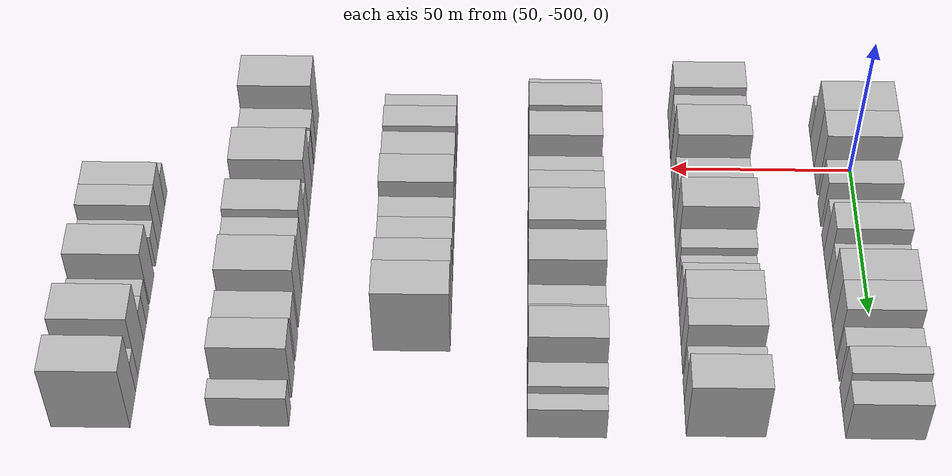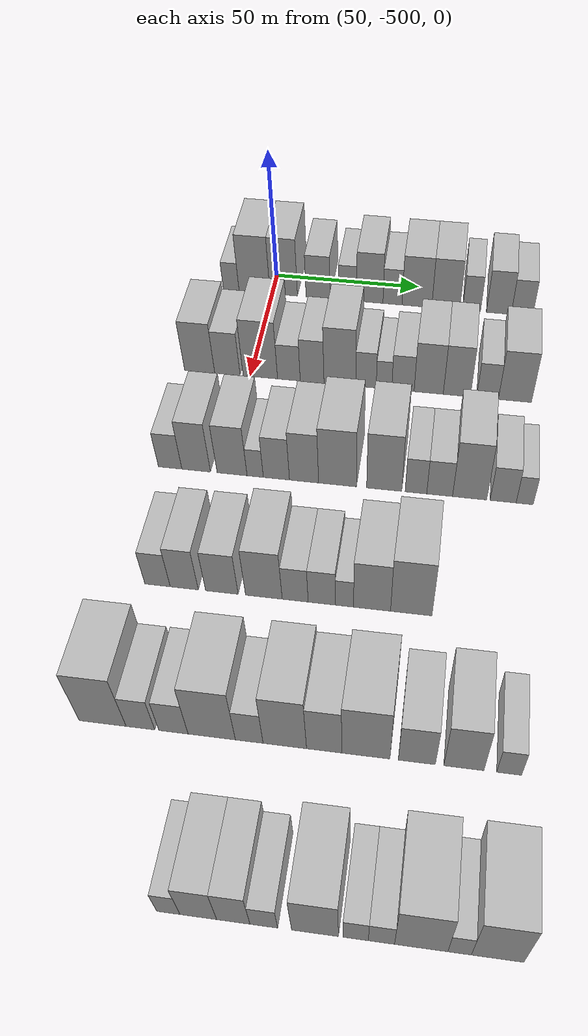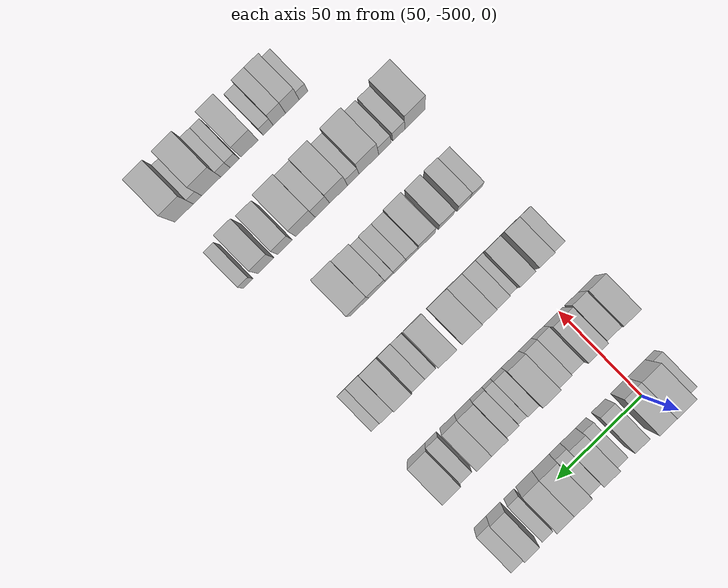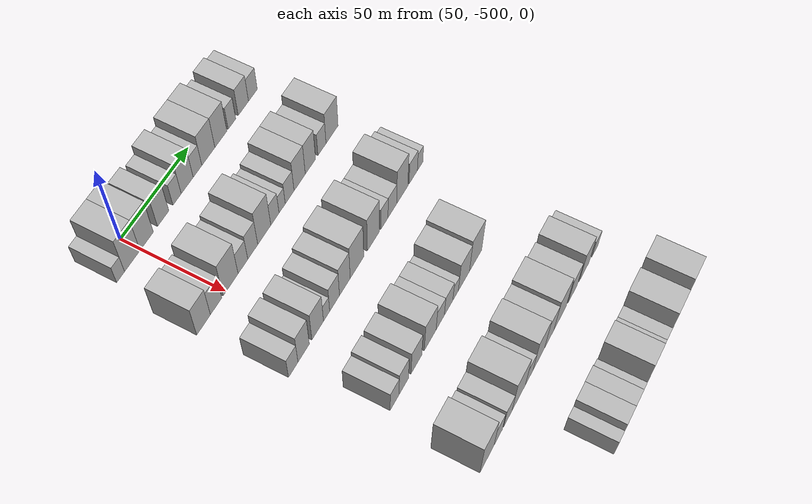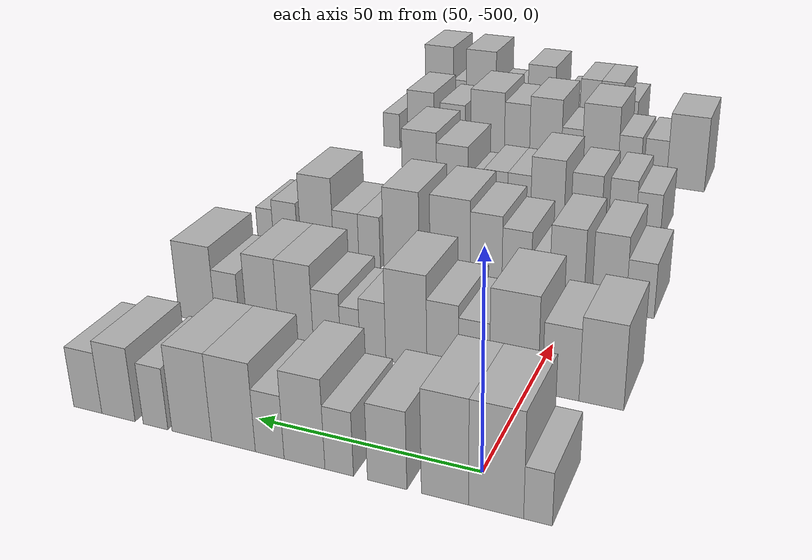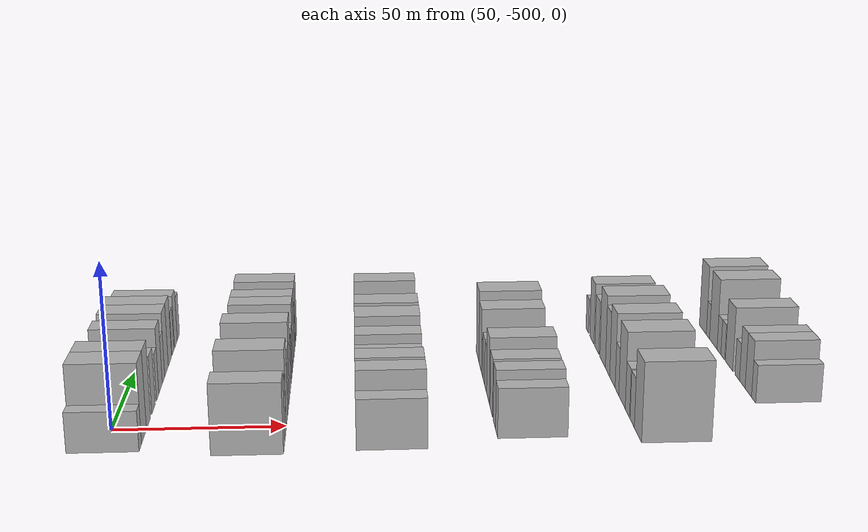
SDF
<sdf version="1.6">
 <world name="default">
  <model name="building_12">
   <static>1</static>
   <pose>50.0000 -514.4109 0 0.000000 0.000000 0.000000</pose>
   <link name="link">
    <pose>0 0 6.00 0 0 0</pose>
    <collision name="collision"><geometry><box><size>20.0000 5.5413 12.0000</size></box></geometry></collision>
    <visual name="visual">
     <cast_shadows>0</cast_shadows>
     <geometry><box><size>20.0000 5.5413 12.0000</size></box></geometry>
     <material>
      <script>
       <uri>model://HANNAS_wall/materials/scripts</uri>
       <uri>model://HANNAS_wall/materials/textures</uri>
       <name>vrc/HANNAS_wall</name>
      </script>
     </material>
    </visual>
   </link>
  </model>
  <model name="building_13">
   <static>1</static>
   <pose>50.0000 -506.1963 0 0.000000 0.000000 0.000000</pose>
   <link name="link">
    <pose>0 0 12.00 0 0 0</pose>
    <collision name="collision"><geometry><box><size>20.0000 10.8880 24.0000</size></box></geometry></collision>
    <visual name="visual">
     <cast_shadows>0</cast_shadows>
     <geometry><box><size>20.0000 10.8880 24.0000</size></box></geometry>
     <material>
      <script>
       <uri>model://HANNAS_wall/materials/scripts</uri>
       <uri>model://HANNAS_wall/materials/textures</uri>
       <name>vrc/HANNAS_wall</name>
      </script>
     </material>
    </visual>
   </link>
  </model>
  <model name="building_14">
   <static>1</static>
   <pose>50.0000 -495.9361 0 0.000000 0.000000 0.000000</pose>
   <link name="link">
    <pose>0 0 12.00 0 0 0</pose>
    <collision name="collision"><geometry><box><size>20.0000 9.6323 24.0000</size></box></geometry></collision>
    <visual name="visual">
     <cast_shadows>0</cast_shadows>
     <geometry><box><size>20.0000 9.6323 24.0000</size></box></geometry>
     <material>
      <script>
       <uri>model://HANNAS_wall/materials/scripts</uri>
       <uri>model://HANNAS_wall/materials/textures</uri>
       <name>vrc/HANNAS_wall</name>
      </script>
     </material>
    </visual>
   </link>
  </model>
  <model name="building_15">
   <static>1</static>
   <pose>50.0000 -483.9486 0 0.000000 0.000000 0.000000</pose>
   <link name="link">
    <pose>0 0 9.00 0 0 0</pose>
    <collision name="collision"><geometry><box><size>20.0000 8.3428 18.0000</size></box></geometry></collision>
    <visual name="visual">
     <cast_shadows>0</cast_shadows>
     <geometry><box><size>20.0000 8.3428 18.0000</size></box></geometry>
     <material>
      <script>
       <uri>model://HANNAS_wall/materials/scripts</uri>
       <uri>model://HANNAS_wall/materials/textures</uri>
       <name>vrc/HANNAS_wall</name>
      </script>
     </material>
    </visual>
   </link>
  </model>
  <model name="building_16">
   <static>1</static>
   <pose>50.0000 -473.6655 0 0.000000 0.000000 0.000000</pose>
   <link name="link">
    <pose>0 0 7.50 0 0 0</pose>
    <collision name="collision"><geometry><box><size>20.0000 6.2233 15.0000</size></box></geometry></collision>
    <visual name="visual">
     <cast_shadows>0</cast_shadows>
     <geometry><box><size>20.0000 6.2233 15.0000</size></box></geometry>
     <material>
      <script>
       <uri>model://HANNAS_wall/materials/scripts</uri>
       <uri>model://HANNAS_wall/materials/textures</uri>
       <name>vrc/HANNAS_wall</name>
      </script>
     </material>
    </visual>
   </link>
  </model>
  <model name="building_17">
   <static>1</static>
   <pose>50.0000 -466.0045 0 0.000000 0.000000 0.000000</pose>
   <link name="link">
    <pose>0 0 10.50 0 0 0</pose>
    <collision name="collision"><geometry><box><size>20.0000 9.0988 21.0000</size></box></geometry></collision>
    <visual name="visual">
     <cast_shadows>0</cast_shadows>
     <geometry><box><size>20.0000 9.0988 21.0000</size></box></geometry>
     <material>
      <script>
       <uri>model://HANNAS_wall/materials/scripts</uri>
       <uri>model://HANNAS_wall/materials/textures</uri>
       <name>vrc/HANNAS_wall</name>
      </script>
     </material>
    </visual>
   </link>
  </model>
  <model name="building_18">
   <static>1</static>
   <pose>50.0000 -458.1741 0 0.000000 0.000000 0.000000</pose>
   <link name="link">
    <pose>0 0 7.50 0 0 0</pose>
    <collision name="collision"><geometry><box><size>20.0000 6.5619 15.0000</size></box></geometry></collision>
    <visual name="visual">
     <cast_shadows>0</cast_shadows>
     <geometry><box><size>20.0000 6.5619 15.0000</size></box></geometry>
     <material>
      <script>
       <uri>model://HANNAS_wall/materials/scripts</uri>
       <uri>model://HANNAS_wall/materials/textures</uri>
       <name>vrc/HANNAS_wall</name>
      </script>
     </material>
    </visual>
   </link>
  </model>
  <model name="building_19">
   <static>1</static>
   <pose>50.0000 -449.7995 0 0.000000 0.000000 0.000000</pose>
   <link name="link">
    <pose>0 0 10.50 0 0 0</pose>
    <collision name="collision"><geometry><box><size>20.0000 10.1874 21.0000</size></box></geometry></collision>
    <visual name="visual">
     <cast_shadows>0</cast_shadows>
     <geometry><box><size>20.0000 10.1874 21.0000</size></box></geometry>
     <material>
      <script>
       <uri>model://HANNAS_wall/materials/scripts</uri>
       <uri>model://HANNAS_wall/materials/textures</uri>
       <name>vrc/HANNAS_wall</name>
      </script>
     </material>
    </visual>
   </link>
  </model>
  <model name="building_20">
   <static>1</static>
   <pose>50.0000 -439.9442 0 0.000000 0.000000 0.000000</pose>
   <link name="link">
    <pose>0 0 10.50 0 0 0</pose>
    <collision name="collision"><geometry><box><size>20.0000 9.5231 21.0000</size></box></geometry></collision>
    <visual name="visual">
     <cast_shadows>0</cast_shadows>
     <geometry><box><size>20.0000 9.5231 21.0000</size></box></geometry>
     <material>
      <script>
       <uri>model://HANNAS_wall/materials/scripts</uri>
       <uri>model://HANNAS_wall/materials/textures</uri>
       <name>vrc/HANNAS_wall</name>
      </script>
     </material>
    </visual>
   </link>
  </model>
  <model name="building_21">
   <static>1</static>
   <pose>50.0000 -431.1389 0 0.000000 0.000000 0.000000</pose>
   <link name="link">
    <pose>0 0 7.50 0 0 0</pose>
    <collision name="collision"><geometry><box><size>20.0000 6.0876 15.0000</size></box></geometry></collision>
    <visual name="visual">
     <cast_shadows>0</cast_shadows>
     <geometry><box><size>20.0000 6.0876 15.0000</size></box></geometry>
     <material>
      <script>
       <uri>model://HANNAS_wall/materials/scripts</uri>
       <uri>model://HANNAS_wall/materials/textures</uri>
       <name>vrc/HANNAS_wall</name>
      </script>
     </material>
    </visual>
   </link>
  </model>
  <model name="building_22">
   <static>1</static>
   <pose>50.0000 -421.9012 0 0.000000 0.000000 0.000000</pose>
   <link name="link">
    <pose>0 0 9.00 0 0 0</pose>
    <collision name="collision"><geometry><box><size>20.0000 8.3877 18.0000</size></box></geometry></collision>
    <visual name="visual">
     <cast_shadows>0</cast_shadows>
     <geometry><box><size>20.0000 8.3877 18.0000</size></box></geometry>
     <material>
      <script>
       <uri>model://HANNAS_wall/materials/scripts</uri>
       <uri>model://HANNAS_wall/materials/textures</uri>
       <name>vrc/HANNAS_wall</name>
      </script>
     </material>
    </visual>
   </link>
  </model>
  <model name="building_23">
   <static>1</static>
   <pose>50.0000 -414.0923 0 0.000000 0.000000 0.000000</pose>
   <link name="link">
    <pose>0 0 7.50 0 0 0</pose>
    <collision name="collision"><geometry><box><size>20.0000 7.2301 15.0000</size></box></geometry></collision>
    <visual name="visual">
     <cast_shadows>0</cast_shadows>
     <geometry><box><size>20.0000 7.2301 15.0000</size></box></geometry>
     <material>
      <script>
       <uri>model://HANNAS_wall/materials/scripts</uri>
       <uri>model://HANNAS_wall/materials/textures</uri>
       <name>vrc/HANNAS_wall</name>
      </script>
     </material>
    </visual>
   </link>
  </model>
  <model name="building_149">
   <static>1</static>
   <pose>90.0000 -516.5032 0 0.000000 0.000000 0.000000</pose>
   <link name="link">
    <pose>0 0 10.50 0 0 0</pose>
    <collision name="collision"><geometry><box><size>20.0000 9.8669 21.0000</size></box></geometry></collision>
    <visual name="visual">
     <cast_shadows>0</cast_shadows>
     <geometry><box><size>20.0000 9.8669 21.0000</size></box></geometry>
     <material>
      <script>
       <uri>model://HANNAS_wall/materials/scripts</uri>
       <uri>model://HANNAS_wall/materials/textures</uri>
       <name>vrc/HANNAS_wall</name>
      </script>
     </material>
    </visual>
   </link>
  </model>
  <model name="building_150">
   <static>1</static>
   <pose>90.0000 -507.4318 0 0.000000 0.000000 0.000000</pose>
   <link name="link">
    <pose>0 0 9.00 0 0 0</pose>
    <collision name="collision"><geometry><box><size>20.0000 8.2759 18.0000</size></box></geometry></collision>
    <visual name="visual">
     <cast_shadows>0</cast_shadows>
     <geometry><box><size>20.0000 8.2759 18.0000</size></box></geometry>
     <material>
      <script>
       <uri>model://HANNAS_wall/materials/scripts</uri>
       <uri>model://HANNAS_wall/materials/textures</uri>
       <name>vrc/HANNAS_wall</name>
      </script>
     </material>
    </visual>
   </link>
  </model>
  <model name="building_151">
   <static>1</static>
   <pose>90.0000 -496.7005 0 0.000000 0.000000 0.000000</pose>
   <link name="link">
    <pose>0 0 12.00 0 0 0</pose>
    <collision name="collision"><geometry><box><size>20.0000 11.1866 24.0000</size></box></geometry></collision>
    <visual name="visual">
     <cast_shadows>0</cast_shadows>
     <geometry><box><size>20.0000 11.1866 24.0000</size></box></geometry>
     <material>
      <script>
       <uri>model://HANNAS_wall/materials/scripts</uri>
       <uri>model://HANNAS_wall/materials/textures</uri>
       <name>vrc/HANNAS_wall</name>
      </script>
     </material>
    </visual>
   </link>
  </model>
  <model name="building_152">
   <static>1</static>
   <pose>90.0000 -487.4427 0 0.000000 0.000000 0.000000</pose>
   <link name="link">
    <pose>0 0 7.50 0 0 0</pose>
    <collision name="collision"><geometry><box><size>20.0000 7.3288 15.0000</size></box></geometry></collision>
    <visual name="visual">
     <cast_shadows>0</cast_shadows>
     <geometry><box><size>20.0000 7.3288 15.0000</size></box></geometry>
     <material>
      <script>
       <uri>model://HANNAS_wall/materials/scripts</uri>
       <uri>model://HANNAS_wall/materials/textures</uri>
       <name>vrc/HANNAS_wall</name>
      </script>
     </material>
    </visual>
   </link>
  </model>
  <model name="building_153">
   <static>1</static>
   <pose>90.0000 -479.9541 0 0.000000 0.000000 0.000000</pose>
   <link name="link">
    <pose>0 0 9.00 0 0 0</pose>
    <collision name="collision"><geometry><box><size>20.0000 7.6484 18.0000</size></box></geometry></collision>
    <visual name="visual">
     <cast_shadows>0</cast_shadows>
     <geometry><box><size>20.0000 7.6484 18.0000</size></box></geometry>
     <material>
      <script>
       <uri>model://HANNAS_wall/materials/scripts</uri>
       <uri>model://HANNAS_wall/materials/textures</uri>
       <name>vrc/HANNAS_wall</name>
      </script>
     </material>
    </visual>
   </link>
  </model>
  <model name="building_154">
   <static>1</static>
   <pose>90.0000 -471.0406 0 0.000000 0.000000 0.000000</pose>
   <link name="link">
    <pose>0 0 12.00 0 0 0</pose>
    <collision name="collision"><geometry><box><size>20.0000 10.1787 24.0000</size></box></geometry></collision>
    <visual name="visual">
     <cast_shadows>0</cast_shadows>
     <geometry><box><size>20.0000 10.1787 24.0000</size></box></geometry>
     <material>
      <script>
       <uri>model://HANNAS_wall/materials/scripts</uri>
       <uri>model://HANNAS_wall/materials/textures</uri>
       <name>vrc/HANNAS_wall</name>
      </script>
     </material>
    </visual>
   </link>
  </model>
  <model name="building_155">
   <static>1</static>
   <pose>90.0000 -462.6924 0 0.000000 0.000000 0.000000</pose>
   <link name="link">
    <pose>0 0 7.50 0 0 0</pose>
    <collision name="collision"><geometry><box><size>20.0000 6.5176 15.0000</size></box></geometry></collision>
    <visual name="visual">
     <cast_shadows>0</cast_shadows>
     <geometry><box><size>20.0000 6.5176 15.0000</size></box></geometry>
     <material>
      <script>
       <uri>model://HANNAS_wall/materials/scripts</uri>
       <uri>model://HANNAS_wall/materials/textures</uri>
       <name>vrc/HANNAS_wall</name>
      </script>
     </material>
    </visual>
   </link>
  </model>
  <model name="building_156">
   <static>1</static>
   <pose>90.0000 -456.9535 0 0.000000 0.000000 0.000000</pose>
   <link name="link">
    <pose>0 0 6.00 0 0 0</pose>
    <collision name="collision"><geometry><box><size>20.0000 4.9603 12.0000</size></box></geometry></collision>
    <visual name="visual">
     <cast_shadows>0</cast_shadows>
     <geometry><box><size>20.0000 4.9603 12.0000</size></box></geometry>
     <material>
      <script>
       <uri>model://HANNAS_wall/materials/scripts</uri>
       <uri>model://HANNAS_wall/materials/textures</uri>
       <name>vrc/HANNAS_wall</name>
      </script>
     </material>
    </visual>
   </link>
  </model>
  <model name="building_157">
   <static>1</static>
   <pose>90.0000 -450.9360 0 0.000000 0.000000 0.000000</pose>
   <link name="link">
    <pose>0 0 7.50 0 0 0</pose>
    <collision name="collision"><geometry><box><size>20.0000 7.0747 15.0000</size></box></geometry></collision>
    <visual name="visual">
     <cast_shadows>0</cast_shadows>
     <geometry><box><size>20.0000 7.0747 15.0000</size></box></geometry>
     <material>
      <script>
       <uri>model://HANNAS_wall/materials/scripts</uri>
       <uri>model://HANNAS_wall/materials/textures</uri>
       <name>vrc/HANNAS_wall</name>
      </script>
     </material>
    </visual>
   </link>
  </model>
  <model name="building_158">
   <static>1</static>
   <pose>90.0000 -442.7966 0 0.000000 0.000000 0.000000</pose>
   <link name="link">
    <pose>0 0 10.50 0 0 0</pose>
    <collision name="collision"><geometry><box><size>20.0000 9.2040 21.0000</size></box></geometry></collision>
    <visual name="visual">
     <cast_shadows>0</cast_shadows>
     <geometry><box><size>20.0000 9.2040 21.0000</size></box></geometry>
     <material>
      <script>
       <uri>model://HANNAS_wall/materials/scripts</uri>
       <uri>model://HANNAS_wall/materials/textures</uri>
       <name>vrc/HANNAS_wall</name>
      </script>
     </material>
    </visual>
   </link>
  </model>
  <model name="building_159">
   <static>1</static>
   <pose>90.0000 -433.9393 0 0.000000 0.000000 0.000000</pose>
   <link name="link">
    <pose>0 0 10.50 0 0 0</pose>
    <collision name="collision"><geometry><box><size>20.0000 8.5106 21.0000</size></box></geometry></collision>
    <visual name="visual">
     <cast_shadows>0</cast_shadows>
     <geometry><box><size>20.0000 8.5106 21.0000</size></box></geometry>
     <material>
      <script>
       <uri>model://HANNAS_wall/materials/scripts</uri>
       <uri>model://HANNAS_wall/materials/textures</uri>
       <name>vrc/HANNAS_wall</name>
      </script>
     </material>
    </visual>
   </link>
  </model>
  <model name="building_160">
   <static>1</static>
   <pose>90.0000 -424.2913 0 0.000000 0.000000 0.000000</pose>
   <link name="link">
    <pose>0 0 7.50 0 0 0</pose>
    <collision name="collision"><geometry><box><size>20.0000 6.7853 15.0000</size></box></geometry></collision>
    <visual name="visual">
     <cast_shadows>0</cast_shadows>
     <geometry><box><size>20.0000 6.7853 15.0000</size></box></geometry>
     <material>
      <script>
       <uri>model://HANNAS_wall/materials/scripts</uri>
       <uri>model://HANNAS_wall/materials/textures</uri>
       <name>vrc/HANNAS_wall</name>
      </script>
     </material>
    </visual>
   </link>
  </model>
  <model name="building_161">
   <static>1</static>
   <pose>90.0000 -415.7488 0 0.000000 0.000000 0.000000</pose>
   <link name="link">
    <pose>0 0 10.50 0 0 0</pose>
    <collision name="collision"><geometry><box><size>20.0000 10.2997 21.0000</size></box></geometry></collision>
    <visual name="visual">
     <cast_shadows>0</cast_shadows>
     <geometry><box><size>20.0000 10.2997 21.0000</size></box></geometry>
     <material>
      <script>
       <uri>model://HANNAS_wall/materials/scripts</uri>
       <uri>model://HANNAS_wall/materials/textures</uri>
       <name>vrc/HANNAS_wall</name>
      </script>
     </material>
    </visual>
   </link>
  </model>
  <model name="building_290">
   <static>1</static>
   <pose>130.0000 -516.3185 0 0.000000 0.000000 0.000000</pose>
   <link name="link">
    <pose>0 0 7.50 0 0 0</pose>
    <collision name="collision"><geometry><box><size>20.0000 7.0874 15.0000</size></box></geometry></collision>
    <visual name="visual">
     <cast_shadows>0</cast_shadows>
     <geometry><box><size>20.0000 7.0874 15.0000</size></box></geometry>
     <material>
      <script>
       <uri>model://HANNAS_wall/materials/scripts</uri>
       <uri>model://HANNAS_wall/materials/textures</uri>
       <name>vrc/HANNAS_wall</name>
      </script>
     </material>
    </visual>
   </link>
  </model>
  <model name="building_291">
   <static>1</static>
   <pose>130.0000 -508.4704 0 0.000000 0.000000 0.000000</pose>
   <link name="link">
    <pose>0 0 10.50 0 0 0</pose>
    <collision name="collision"><geometry><box><size>20.0000 8.6089 21.0000</size></box></geometry></collision>
    <visual name="visual">
     <cast_shadows>0</cast_shadows>
     <geometry><box><size>20.0000 8.6089 21.0000</size></box></geometry>
     <material>
      <script>
       <uri>model://HANNAS_wall/materials/scripts</uri>
       <uri>model://HANNAS_wall/materials/textures</uri>
       <name>vrc/HANNAS_wall</name>
      </script>
     </material>
    </visual>
   </link>
  </model>
  <model name="building_292">
   <static>1</static>
   <pose>130.0000 -497.6814 0 0.000000 0.000000 0.000000</pose>
   <link name="link">
    <pose>0 0 10.50 0 0 0</pose>
    <collision name="collision"><geometry><box><size>20.0000 8.9689 21.0000</size></box></geometry></collision>
    <visual name="visual">
     <cast_shadows>0</cast_shadows>
     <geometry><box><size>20.0000 8.9689 21.0000</size></box></geometry>
     <material>
      <script>
       <uri>model://HANNAS_wall/materials/scripts</uri>
       <uri>model://HANNAS_wall/materials/textures</uri>
       <name>vrc/HANNAS_wall</name>
      </script>
     </material>
    </visual>
   </link>
  </model>
  <model name="building_293">
   <static>1</static>
   <pose>130.0000 -490.7765 0 0.000000 0.000000 0.000000</pose>
   <link name="link">
    <pose>0 0 6.00 0 0 0</pose>
    <collision name="collision"><geometry><box><size>20.0000 4.8409 12.0000</size></box></geometry></collision>
    <visual name="visual">
     <cast_shadows>0</cast_shadows>
     <geometry><box><size>20.0000 4.8409 12.0000</size></box></geometry>
     <material>
      <script>
       <uri>model://HANNAS_wall/materials/scripts</uri>
       <uri>model://HANNAS_wall/materials/textures</uri>
       <name>vrc/HANNAS_wall</name>
      </script>
     </material>
    </visual>
   </link>
  </model>
  <model name="building_294">
   <static>1</static>
   <pose>130.0000 -484.4724 0 0.000000 0.000000 0.000000</pose>
   <link name="link">
    <pose>0 0 9.00 0 0 0</pose>
    <collision name="collision"><geometry><box><size>20.0000 7.7673 18.0000</size></box></geometry></collision>
    <visual name="visual">
     <cast_shadows>0</cast_shadows>
     <geometry><box><size>20.0000 7.7673 18.0000</size></box></geometry>
     <material>
      <script>
       <uri>model://HANNAS_wall/materials/scripts</uri>
       <uri>model://HANNAS_wall/materials/textures</uri>
       <name>vrc/HANNAS_wall</name>
      </script>
     </material>
    </visual>
   </link>
  </model>
  <model name="building_295">
   <static>1</static>
   <pose>130.0000 -476.2805 0 0.000000 0.000000 0.000000</pose>
   <link name="link">
    <pose>0 0 10.50 0 0 0</pose>
    <collision name="collision"><geometry><box><size>20.0000 8.6164 21.0000</size></box></geometry></collision>
    <visual name="visual">
     <cast_shadows>0</cast_shadows>
     <geometry><box><size>20.0000 8.6164 21.0000</size></box></geometry>
     <material>
      <script>
       <uri>model://HANNAS_wall/materials/scripts</uri>
       <uri>model://HANNAS_wall/materials/textures</uri>
       <name>vrc/HANNAS_wall</name>
      </script>
     </material>
    </visual>
   </link>
  </model>
  <model name="building_296">
   <static>1</static>
   <pose>130.0000 -466.4244 0 0.000000 0.000000 0.000000</pose>
   <link name="link">
    <pose>0 0 12.00 0 0 0</pose>
    <collision name="collision"><geometry><box><size>20.0000 11.0957 24.0000</size></box></geometry></collision>
    <visual name="visual">
     <cast_shadows>0</cast_shadows>
     <geometry><box><size>20.0000 11.0957 24.0000</size></box></geometry>
     <material>
      <script>
       <uri>model://HANNAS_wall/materials/scripts</uri>
       <uri>model://HANNAS_wall/materials/textures</uri>
       <name>vrc/HANNAS_wall</name>
      </script>
     </material>
    </visual>
   </link>
  </model>
  <model name="building_297">
   <static>1</static>
   <pose>130.0000 -452.7610 0 0.000000 0.000000 0.000000</pose>
   <link name="link">
    <pose>0 0 12.00 0 0 0</pose>
    <collision name="collision"><geometry><box><size>20.0000 10.2312 24.0000</size></box></geometry></collision>
    <visual name="visual">
     <cast_shadows>0</cast_shadows>
     <geometry><box><size>20.0000 10.2312 24.0000</size></box></geometry>
     <material>
      <script>
       <uri>model://HANNAS_wall/materials/scripts</uri>
       <uri>model://HANNAS_wall/materials/textures</uri>
       <name>vrc/HANNAS_wall</name>
      </script>
     </material>
    </visual>
   </link>
  </model>
  <model name="building_298">
   <static>1</static>
   <pose>130.0000 -443.5196 0 0.000000 0.000000 0.000000</pose>
   <link name="link">
    <pose>0 0 7.50 0 0 0</pose>
    <collision name="collision"><geometry><box><size>20.0000 6.2516 15.0000</size></box></geometry></collision>
    <visual name="visual">
     <cast_shadows>0</cast_shadows>
     <geometry><box><size>20.0000 6.2516 15.0000</size></box></geometry>
     <material>
      <script>
       <uri>model://HANNAS_wall/materials/scripts</uri>
       <uri>model://HANNAS_wall/materials/textures</uri>
       <name>vrc/HANNAS_wall</name>
      </script>
     </material>
    </visual>
   </link>
  </model>
  <model name="building_299">
   <static>1</static>
   <pose>130.0000 -436.6660 0 0.000000 0.000000 0.000000</pose>
   <link name="link">
    <pose>0 0 7.50 0 0 0</pose>
    <collision name="collision"><geometry><box><size>20.0000 7.4555 15.0000</size></box></geometry></collision>
    <visual name="visual">
     <cast_shadows>0</cast_shadows>
     <geometry><box><size>20.0000 7.4555 15.0000</size></box></geometry>
     <material>
      <script>
       <uri>model://HANNAS_wall/materials/scripts</uri>
       <uri>model://HANNAS_wall/materials/textures</uri>
       <name>vrc/HANNAS_wall</name>
      </script>
     </material>
    </visual>
   </link>
  </model>
  <model name="building_300">
   <static>1</static>
   <pose>130.0000 -428.0260 0 0.000000 0.000000 0.000000</pose>
   <link name="link">
    <pose>0 0 12.00 0 0 0</pose>
    <collision name="collision"><geometry><box><size>20.0000 9.8245 24.0000</size></box></geometry></collision>
    <visual name="visual">
     <cast_shadows>0</cast_shadows>
     <geometry><box><size>20.0000 9.8245 24.0000</size></box></geometry>
     <material>
      <script>
       <uri>model://HANNAS_wall/materials/scripts</uri>
       <uri>model://HANNAS_wall/materials/textures</uri>
       <name>vrc/HANNAS_wall</name>
      </script>
     </material>
    </visual>
   </link>
  </model>
  <model name="building_301">
   <static>1</static>
   <pose>130.0000 -418.3978 0 0.000000 0.000000 0.000000</pose>
   <link name="link">
    <pose>0 0 7.50 0 0 0</pose>
    <collision name="collision"><geometry><box><size>20.0000 7.4320 15.0000</size></box></geometry></collision>
    <visual name="visual">
     <cast_shadows>0</cast_shadows>
     <geometry><box><size>20.0000 7.4320 15.0000</size></box></geometry>
     <material>
      <script>
       <uri>model://HANNAS_wall/materials/scripts</uri>
       <uri>model://HANNAS_wall/materials/textures</uri>
       <name>vrc/HANNAS_wall</name>
      </script>
     </material>
    </visual>
   </link>
  </model>
  <model name="building_302">
   <static>1</static>
   <pose>130.0000 -412.2387 0 0.000000 0.000000 0.000000</pose>
   <link name="link">
    <pose>0 0 6.00 0 0 0</pose>
    <collision name="collision"><geometry><box><size>20.0000 4.8861 12.0000</size></box></geometry></collision>
    <visual name="visual">
     <cast_shadows>0</cast_shadows>
     <geometry><box><size>20.0000 4.8861 12.0000</size></box></geometry>
     <material>
      <script>
       <uri>model://HANNAS_wall/materials/scripts</uri>
       <uri>model://HANNAS_wall/materials/textures</uri>
       <name>vrc/HANNAS_wall</name>
      </script>
     </material>
    </visual>
   </link>
  </model>
  <model name="building_429">
   <static>1</static>
   <pose>170.0000 -509.8782 0 0.000000 0.000000 0.000000</pose>
   <link name="link">
    <pose>0 0 7.50 0 0 0</pose>
    <collision name="collision"><geometry><box><size>20.0000 6.9845 15.0000</size></box></geometry></collision>
    <visual name="visual">
     <cast_shadows>0</cast_shadows>
     <geometry><box><size>20.0000 6.9845 15.0000</size></box></geometry>
     <material>
      <script>
       <uri>model://HANNAS_wall/materials/scripts</uri>
       <uri>model://HANNAS_wall/materials/textures</uri>
       <name>vrc/HANNAS_wall</name>
      </script>
     </material>
    </visual>
   </link>
  </model>
  <model name="building_430">
   <static>1</static>
   <pose>170.0000 -502.5335 0 0.000000 0.000000 0.000000</pose>
   <link name="link">
    <pose>0 0 9.00 0 0 0</pose>
    <collision name="collision"><geometry><box><size>20.0000 7.7050 18.0000</size></box></geometry></collision>
    <visual name="visual">
     <cast_shadows>0</cast_shadows>
     <geometry><box><size>20.0000 7.7050 18.0000</size></box></geometry>
     <material>
      <script>
       <uri>model://HANNAS_wall/materials/scripts</uri>
       <uri>model://HANNAS_wall/materials/textures</uri>
       <name>vrc/HANNAS_wall</name>
      </script>
     </material>
    </visual>
   </link>
  </model>
  <model name="building_431">
   <static>1</static>
   <pose>170.0000 -492.2436 0 0.000000 0.000000 0.000000</pose>
   <link name="link">
    <pose>0 0 9.00 0 0 0</pose>
    <collision name="collision"><geometry><box><size>20.0000 8.8748 18.0000</size></box></geometry></collision>
    <visual name="visual">
     <cast_shadows>0</cast_shadows>
     <geometry><box><size>20.0000 8.8748 18.0000</size></box></geometry>
     <material>
      <script>
       <uri>model://HANNAS_wall/materials/scripts</uri>
       <uri>model://HANNAS_wall/materials/textures</uri>
       <name>vrc/HANNAS_wall</name>
      </script>
     </material>
    </visual>
   </link>
  </model>
  <model name="building_432">
   <static>1</static>
   <pose>170.0000 -480.8428 0 0.000000 0.000000 0.000000</pose>
   <link name="link">
    <pose>0 0 10.50 0 0 0</pose>
    <collision name="collision"><geometry><box><size>20.0000 9.9268 21.0000</size></box></geometry></collision>
    <visual name="visual">
     <cast_shadows>0</cast_shadows>
     <geometry><box><size>20.0000 9.9268 21.0000</size></box></geometry>
     <material>
      <script>
       <uri>model://HANNAS_wall/materials/scripts</uri>
       <uri>model://HANNAS_wall/materials/textures</uri>
       <name>vrc/HANNAS_wall</name>
      </script>
     </material>
    </visual>
   </link>
  </model>
  <model name="building_433">
   <static>1</static>
   <pose>170.0000 -472.3835 0 0.000000 0.000000 0.000000</pose>
   <link name="link">
    <pose>0 0 7.50 0 0 0</pose>
    <collision name="collision"><geometry><box><size>20.0000 6.9919 15.0000</size></box></geometry></collision>
    <visual name="visual">
     <cast_shadows>0</cast_shadows>
     <geometry><box><size>20.0000 6.9919 15.0000</size></box></geometry>
     <material>
      <script>
       <uri>model://HANNAS_wall/materials/scripts</uri>
       <uri>model://HANNAS_wall/materials/textures</uri>
       <name>vrc/HANNAS_wall</name>
      </script>
     </material>
    </visual>
   </link>
  </model>
  <model name="building_434">
   <static>1</static>
   <pose>170.0000 -465.2319 0 0.000000 0.000000 0.000000</pose>
   <link name="link">
    <pose>0 0 7.50 0 0 0</pose>
    <collision name="collision"><geometry><box><size>20.0000 7.3113 15.0000</size></box></geometry></collision>
    <visual name="visual">
     <cast_shadows>0</cast_shadows>
     <geometry><box><size>20.0000 7.3113 15.0000</size></box></geometry>
     <material>
      <script>
       <uri>model://HANNAS_wall/materials/scripts</uri>
       <uri>model://HANNAS_wall/materials/textures</uri>
       <name>vrc/HANNAS_wall</name>
      </script>
     </material>
    </visual>
   </link>
  </model>
  <model name="building_435">
   <static>1</static>
   <pose>170.0000 -459.1610 0 0.000000 0.000000 0.000000</pose>
   <link name="link">
    <pose>0 0 6.00 0 0 0</pose>
    <collision name="collision"><geometry><box><size>20.0000 4.8305 12.0000</size></box></geometry></collision>
    <visual name="visual">
     <cast_shadows>0</cast_shadows>
     <geometry><box><size>20.0000 4.8305 12.0000</size></box></geometry>
     <material>
      <script>
       <uri>model://HANNAS_wall/materials/scripts</uri>
       <uri>model://HANNAS_wall/materials/textures</uri>
       <name>vrc/HANNAS_wall</name>
      </script>
     </material>
    </visual>
   </link>
  </model>
  <model name="building_436">
   <static>1</static>
   <pose>170.0000 -451.8363 0 0.000000 0.000000 0.000000</pose>
   <link name="link">
    <pose>0 0 10.50 0 0 0</pose>
    <collision name="collision"><geometry><box><size>20.0000 9.8190 21.0000</size></box></geometry></collision>
    <visual name="visual">
     <cast_shadows>0</cast_shadows>
     <geometry><box><size>20.0000 9.8190 21.0000</size></box></geometry>
     <material>
      <script>
       <uri>model://HANNAS_wall/materials/scripts</uri>
       <uri>model://HANNAS_wall/materials/textures</uri>
       <name>vrc/HANNAS_wall</name>
      </script>
     </material>
    </visual>
   </link>
  </model>
  <model name="building_437">
   <static>1</static>
   <pose>170.0000 -441.4686 0 0.000000 0.000000 0.000000</pose>
   <link name="link">
    <pose>0 0 12.00 0 0 0</pose>
    <collision name="collision"><geometry><box><size>20.0000 10.9163 24.0000</size></box></geometry></collision>
    <visual name="visual">
     <cast_shadows>0</cast_shadows>
     <geometry><box><size>20.0000 10.9163 24.0000</size></box></geometry>
     <material>
      <script>
       <uri>model://HANNAS_wall/materials/scripts</uri>
       <uri>model://HANNAS_wall/materials/textures</uri>
       <name>vrc/HANNAS_wall</name>
      </script>
     </material>
    </visual>
   </link>
  </model>
  <model name="building_558">
   <static>1</static>
   <pose>210.0000 -513.3042 0 0.000000 0.000000 0.000000</pose>
   <link name="link">
    <pose>0 0 12.00 0 0 0</pose>
    <collision name="collision"><geometry><box><size>20.0000 11.7163 24.0000</size></box></geometry></collision>
    <visual name="visual">
     <cast_shadows>0</cast_shadows>
     <geometry><box><size>20.0000 11.7163 24.0000</size></box></geometry>
     <material>
      <script>
       <uri>model://HANNAS_wall/materials/scripts</uri>
       <uri>model://HANNAS_wall/materials/textures</uri>
       <name>vrc/HANNAS_wall</name>
      </script>
     </material>
    </visual>
   </link>
  </model>
  <model name="building_559">
   <static>1</static>
   <pose>210.0000 -503.8714 0 0.000000 0.000000 0.000000</pose>
   <link name="link">
    <pose>0 0 7.50 0 0 0</pose>
    <collision name="collision"><geometry><box><size>20.0000 7.1494 15.0000</size></box></geometry></collision>
    <visual name="visual">
     <cast_shadows>0</cast_shadows>
     <geometry><box><size>20.0000 7.1494 15.0000</size></box></geometry>
     <material>
      <script>
       <uri>model://HANNAS_wall/materials/scripts</uri>
       <uri>model://HANNAS_wall/materials/textures</uri>
       <name>vrc/HANNAS_wall</name>
      </script>
     </material>
    </visual>
   </link>
  </model>
  <model name="building_560">
   <static>1</static>
   <pose>210.0000 -495.6832 0 0.000000 0.000000 0.000000</pose>
   <link name="link">
    <pose>0 0 7.50 0 0 0</pose>
    <collision name="collision"><geometry><box><size>20.0000 7.2270 15.0000</size></box></geometry></collision>
    <visual name="visual">
     <cast_shadows>0</cast_shadows>
     <geometry><box><size>20.0000 7.2270 15.0000</size></box></geometry>
     <material>
      <script>
       <uri>model://HANNAS_wall/materials/scripts</uri>
       <uri>model://HANNAS_wall/materials/textures</uri>
       <name>vrc/HANNAS_wall</name>
      </script>
     </material>
    </visual>
   </link>
  </model>
  <model name="building_561">
   <static>1</static>
   <pose>210.0000 -486.2560 0 0.000000 0.000000 0.000000</pose>
   <link name="link">
    <pose>0 0 12.00 0 0 0</pose>
    <collision name="collision"><geometry><box><size>20.0000 11.6274 24.0000</size></box></geometry></collision>
    <visual name="visual">
     <cast_shadows>0</cast_shadows>
     <geometry><box><size>20.0000 11.6274 24.0000</size></box></geometry>
     <material>
      <script>
       <uri>model://HANNAS_wall/materials/scripts</uri>
       <uri>model://HANNAS_wall/materials/textures</uri>
       <name>vrc/HANNAS_wall</name>
      </script>
     </material>
    </visual>
   </link>
  </model>
  <model name="building_562">
   <static>1</static>
   <pose>210.0000 -477.0541 0 0.000000 0.000000 0.000000</pose>
   <link name="link">
    <pose>0 0 7.50 0 0 0</pose>
    <collision name="collision"><geometry><box><size>20.0000 6.7763 15.0000</size></box></geometry></collision>
    <visual name="visual">
     <cast_shadows>0</cast_shadows>
     <geometry><box><size>20.0000 6.7763 15.0000</size></box></geometry>
     <material>
      <script>
       <uri>model://HANNAS_wall/materials/scripts</uri>
       <uri>model://HANNAS_wall/materials/textures</uri>
       <name>vrc/HANNAS_wall</name>
      </script>
     </material>
    </visual>
   </link>
  </model>
  <model name="building_563">
   <static>1</static>
   <pose>210.0000 -468.4004 0 0.000000 0.000000 0.000000</pose>
   <link name="link">
    <pose>0 0 12.00 0 0 0</pose>
    <collision name="collision"><geometry><box><size>20.0000 10.5311 24.0000</size></box></geometry></collision>
    <visual name="visual">
     <cast_shadows>0</cast_shadows>
     <geometry><box><size>20.0000 10.5311 24.0000</size></box></geometry>
     <material>
      <script>
       <uri>model://HANNAS_wall/materials/scripts</uri>
       <uri>model://HANNAS_wall/materials/textures</uri>
       <name>vrc/HANNAS_wall</name>
      </script>
     </material>
    </visual>
   </link>
  </model>
  <model name="building_564">
   <static>1</static>
   <pose>210.0000 -458.8880 0 0.000000 0.000000 0.000000</pose>
   <link name="link">
    <pose>0 0 10.50 0 0 0</pose>
    <collision name="collision"><geometry><box><size>20.0000 8.4938 21.0000</size></box></geometry></collision>
    <visual name="visual">
     <cast_shadows>0</cast_shadows>
     <geometry><box><size>20.0000 8.4938 21.0000</size></box></geometry>
     <material>
      <script>
       <uri>model://HANNAS_wall/materials/scripts</uri>
       <uri>model://HANNAS_wall/materials/textures</uri>
       <name>vrc/HANNAS_wall</name>
      </script>
     </material>
    </visual>
   </link>
  </model>
  <model name="building_565">
   <static>1</static>
   <pose>210.0000 -448.8759 0 0.000000 0.000000 0.000000</pose>
   <link name="link">
    <pose>0 0 12.00 0 0 0</pose>
    <collision name="collision"><geometry><box><size>20.0000 11.5304 24.0000</size></box></geometry></collision>
    <visual name="visual">
     <cast_shadows>0</cast_shadows>
     <geometry><box><size>20.0000 11.5304 24.0000</size></box></geometry>
     <material>
      <script>
       <uri>model://HANNAS_wall/materials/scripts</uri>
       <uri>model://HANNAS_wall/materials/textures</uri>
       <name>vrc/HANNAS_wall</name>
      </script>
     </material>
    </visual>
   </link>
  </model>
  <model name="building_566">
   <static>1</static>
   <pose>210.0000 -436.7139 0 0.000000 0.000000 0.000000</pose>
   <link name="link">
    <pose>0 0 9.00 0 0 0</pose>
    <collision name="collision"><geometry><box><size>20.0000 8.7936 18.0000</size></box></geometry></collision>
    <visual name="visual">
     <cast_shadows>0</cast_shadows>
     <geometry><box><size>20.0000 8.7936 18.0000</size></box></geometry>
     <material>
      <script>
       <uri>model://HANNAS_wall/materials/scripts</uri>
       <uri>model://HANNAS_wall/materials/textures</uri>
       <name>vrc/HANNAS_wall</name>
      </script>
     </material>
    </visual>
   </link>
  </model>
  <model name="building_567">
   <static>1</static>
   <pose>210.0000 -425.5927 0 0.000000 0.000000 0.000000</pose>
   <link name="link">
    <pose>0 0 10.50 0 0 0</pose>
    <collision name="collision"><geometry><box><size>20.0000 9.4487 21.0000</size></box></geometry></collision>
    <visual name="visual">
     <cast_shadows>0</cast_shadows>
     <geometry><box><size>20.0000 9.4487 21.0000</size></box></geometry>
     <material>
      <script>
       <uri>model://HANNAS_wall/materials/scripts</uri>
       <uri>model://HANNAS_wall/materials/textures</uri>
       <name>vrc/HANNAS_wall</name>
      </script>
     </material>
    </visual>
   </link>
  </model>
  <model name="building_568">
   <static>1</static>
   <pose>210.0000 -414.9509 0 0.000000 0.000000 0.000000</pose>
   <link name="link">
    <pose>0 0 6.00 0 0 0</pose>
    <collision name="collision"><geometry><box><size>20.0000 5.8349 12.0000</size></box></geometry></collision>
    <visual name="visual">
     <cast_shadows>0</cast_shadows>
     <geometry><box><size>20.0000 5.8349 12.0000</size></box></geometry>
     <material>
      <script>
       <uri>model://HANNAS_wall/materials/scripts</uri>
       <uri>model://HANNAS_wall/materials/textures</uri>
       <name>vrc/HANNAS_wall</name>
      </script>
     </material>
    </visual>
   </link>
  </model>
  <model name="building_701">
   <static>1</static>
   <pose>250.0000 -486.9867 0 0.000000 0.000000 0.000000</pose>
   <link name="link">
    <pose>0 0 6.00 0 0 0</pose>
    <collision name="collision"><geometry><box><size>20.0000 5.0956 12.0000</size></box></geometry></collision>
    <visual name="visual">
     <cast_shadows>0</cast_shadows>
     <geometry><box><size>20.0000 5.0956 12.0000</size></box></geometry>
     <material>
      <script>
       <uri>model://HANNAS_wall/materials/scripts</uri>
       <uri>model://HANNAS_wall/materials/textures</uri>
       <name>vrc/HANNAS_wall</name>
      </script>
     </material>
    </visual>
   </link>
  </model>
  <model name="building_702">
   <static>1</static>
   <pose>250.0000 -480.4098 0 0.000000 0.000000 0.000000</pose>
   <link name="link">
    <pose>0 0 9.00 0 0 0</pose>
    <collision name="collision"><geometry><box><size>20.0000 8.0581 18.0000</size></box></geometry></collision>
    <visual name="visual">
     <cast_shadows>0</cast_shadows>
     <geometry><box><size>20.0000 8.0581 18.0000</size></box></geometry>
     <material>
      <script>
       <uri>model://HANNAS_wall/materials/scripts</uri>
       <uri>model://HANNAS_wall/materials/textures</uri>
       <name>vrc/HANNAS_wall</name>
      </script>
     </material>
    </visual>
   </link>
  </model>
  <model name="building_703">
   <static>1</static>
   <pose>250.0000 -472.7555 0 0.000000 0.000000 0.000000</pose>
   <link name="link">
    <pose>0 0 9.00 0 0 0</pose>
    <collision name="collision"><geometry><box><size>20.0000 7.2506 18.0000</size></box></geometry></collision>
    <visual name="visual">
     <cast_shadows>0</cast_shadows>
     <geometry><box><size>20.0000 7.2506 18.0000</size></box></geometry>
     <material>
      <script>
       <uri>model://HANNAS_wall/materials/scripts</uri>
       <uri>model://HANNAS_wall/materials/textures</uri>
       <name>vrc/HANNAS_wall</name>
      </script>
     </material>
    </visual>
   </link>
  </model>
  <model name="building_704">
   <static>1</static>
   <pose>250.0000 -466.1365 0 0.000000 0.000000 0.000000</pose>
   <link name="link">
    <pose>0 0 6.00 0 0 0</pose>
    <collision name="collision"><geometry><box><size>20.0000 5.9873 12.0000</size></box></geometry></collision>
    <visual name="visual">
     <cast_shadows>0</cast_shadows>
     <geometry><box><size>20.0000 5.9873 12.0000</size></box></geometry>
     <material>
      <script>
       <uri>model://HANNAS_wall/materials/scripts</uri>
       <uri>model://HANNAS_wall/materials/textures</uri>
       <name>vrc/HANNAS_wall</name>
      </script>
     </material>
    </visual>
   </link>
  </model>
  <model name="building_705">
   <static>1</static>
   <pose>250.0000 -455.1151 0 0.000000 0.000000 0.000000</pose>
   <link name="link">
    <pose>0 0 10.50 0 0 0</pose>
    <collision name="collision"><geometry><box><size>20.0000 10.0554 21.0000</size></box></geometry></collision>
    <visual name="visual">
     <cast_shadows>0</cast_shadows>
     <geometry><box><size>20.0000 10.0554 21.0000</size></box></geometry>
     <material>
      <script>
       <uri>model://HANNAS_wall/materials/scripts</uri>
       <uri>model://HANNAS_wall/materials/textures</uri>
       <name>vrc/HANNAS_wall</name>
      </script>
     </material>
    </visual>
   </link>
  </model>
  <model name="building_706">
   <static>1</static>
   <pose>250.0000 -446.3970 0 0.000000 0.000000 0.000000</pose>
   <link name="link">
    <pose>0 0 6.00 0 0 0</pose>
    <collision name="collision"><geometry><box><size>20.0000 5.3808 12.0000</size></box></geometry></collision>
    <visual name="visual">
     <cast_shadows>0</cast_shadows>
     <geometry><box><size>20.0000 5.3808 12.0000</size></box></geometry>
     <material>
      <script>
       <uri>model://HANNAS_wall/materials/scripts</uri>
       <uri>model://HANNAS_wall/materials/textures</uri>
       <name>vrc/HANNAS_wall</name>
      </script>
     </material>
    </visual>
   </link>
  </model>
  <model name="building_707">
   <static>1</static>
   <pose>250.0000 -440.9319 0 0.000000 0.000000 0.000000</pose>
   <link name="link">
    <pose>0 0 6.00 0 0 0</pose>
    <collision name="collision"><geometry><box><size>20.0000 5.5495 12.0000</size></box></geometry></collision>
    <visual name="visual">
     <cast_shadows>0</cast_shadows>
     <geometry><box><size>20.0000 5.5495 12.0000</size></box></geometry>
     <material>
      <script>
       <uri>model://HANNAS_wall/materials/scripts</uri>
       <uri>model://HANNAS_wall/materials/textures</uri>
       <name>vrc/HANNAS_wall</name>
      </script>
     </material>
    </visual>
   </link>
  </model>
  <model name="building_708">
   <static>1</static>
   <pose>250.0000 -432.5354 0 0.000000 0.000000 0.000000</pose>
   <link name="link">
    <pose>0 0 12.00 0 0 0</pose>
    <collision name="collision"><geometry><box><size>20.0000 11.2435 24.0000</size></box></geometry></collision>
    <visual name="visual">
     <cast_shadows>0</cast_shadows>
     <geometry><box><size>20.0000 11.2435 24.0000</size></box></geometry>
     <material>
      <script>
       <uri>model://HANNAS_wall/materials/scripts</uri>
       <uri>model://HANNAS_wall/materials/textures</uri>
       <name>vrc/HANNAS_wall</name>
      </script>
     </material>
    </visual>
   </link>
  </model>
  <model name="building_709">
   <static>1</static>
   <pose>250.0000 -424.4485 0 0.000000 0.000000 0.000000</pose>
   <link name="link">
    <pose>0 0 6.00 0 0 0</pose>
    <collision name="collision"><geometry><box><size>20.0000 4.9303 12.0000</size></box></geometry></collision>
    <visual name="visual">
     <cast_shadows>0</cast_shadows>
     <geometry><box><size>20.0000 4.9303 12.0000</size></box></geometry>
     <material>
      <script>
       <uri>model://HANNAS_wall/materials/scripts</uri>
       <uri>model://HANNAS_wall/materials/textures</uri>
       <name>vrc/HANNAS_wall</name>
      </script>
     </material>
    </visual>
   </link>
  </model>
  <model name="building_710">
   <static>1</static>
   <pose>250.0000 -416.5042 0 0.000000 0.000000 0.000000</pose>
   <link name="link">
    <pose>0 0 12.00 0 0 0</pose>
    <collision name="collision"><geometry><box><size>20.0000 10.9581 24.0000</size></box></geometry></collision>
    <visual name="visual">
     <cast_shadows>0</cast_shadows>
     <geometry><box><size>20.0000 10.9581 24.0000</size></box></geometry>
     <material>
      <script>
       <uri>model://HANNAS_wall/materials/scripts</uri>
       <uri>model://HANNAS_wall/materials/textures</uri>
       <name>vrc/HANNAS_wall</name>
      </script>
     </material>
    </visual>
   </link>
  </model>
 </world>
</sdf>
